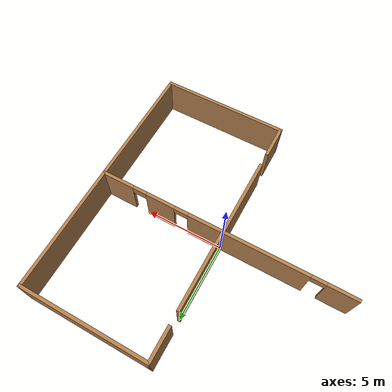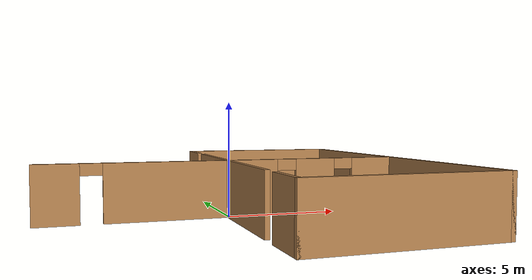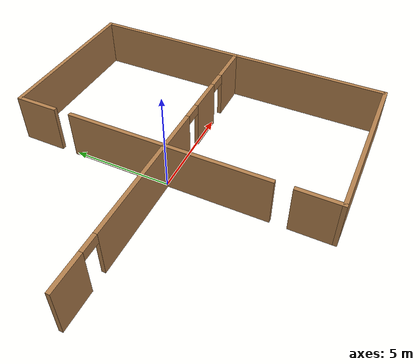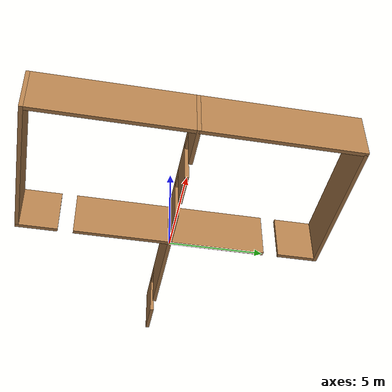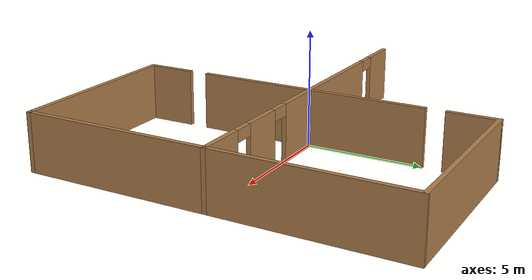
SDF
<?xml version='1.0'?>
<sdf version='1.7'>
  <model name='human_robot_transport'>
    <pose>0 0 0 0 -0 0</pose>
    <link name='Wall_0'>
      <collision name='Wall_0_Collision'>
        <geometry>
          <box>
            <size>2.2 0.2 2.5</size>
          </box>
        </geometry>
        <pose>0 0 1.25 0 -0 0</pose>
      </collision>
      <visual name='Wall_0_Visual'>
        <pose>0 0 1.25 0 -0 0</pose>
        <geometry>
          <box>
            <size>2.2 0.2 2.5</size>
          </box>
        </geometry>
        <material>
          <script>
            <uri>file://media/materials/scripts/gazebo.material</uri>
            <name>Gazebo/Wood</name>
          </script>
          <ambient>1 1 1 1</ambient>
        </material>
        <meta>
          <layer>0</layer>
        </meta>
      </visual>
      <pose>-0 -7 0 0 -0 1.5708</pose>
    </link>
    <link name='Wall_10'>
      <collision name='Wall_10_Collision'>
        <geometry>
          <box>
            <size>8.2 0.2 2.5</size>
          </box>
        </geometry>
        <pose>0 0 1.25 0 -0 0</pose>
      </collision>
      <visual name='Wall_10_Visual'>
        <pose>0 0 1.25 0 -0 0</pose>
        <geometry>
          <box>
            <size>8.2 0.2 2.5</size>
          </box>
        </geometry>
        <material>
          <script>
            <uri>file://media/materials/scripts/gazebo.material</uri>
            <name>Gazebo/Wood</name>
          </script>
          <ambient>1 1 1 1</ambient>
        </material>
        <meta>
          <layer>0</layer>
        </meta>
      </visual>
      <pose>4 8 0 0 -0 0</pose>
    </link>
    <link name='Wall_12'>
      <collision name='Wall_12_Collision'>
        <geometry>
          <box>
            <size>8.2 0.2 2.5</size>
          </box>
        </geometry>
        <pose>0 0 1.25 0 -0 0</pose>
      </collision>
      <visual name='Wall_12_Visual'>
        <pose>0 0 1.25 0 -0 0</pose>
        <geometry>
          <box>
            <size>8.2 0.2 2.5</size>
          </box>
        </geometry>
        <material>
          <script>
            <uri>file://media/materials/scripts/gazebo.material</uri>
            <name>Gazebo/Wood</name>
          </script>
          <ambient>1 1 1 1</ambient>
        </material>
        <meta>
          <layer>0</layer>
        </meta>
      </visual>
      <pose>4 -8 0 0 -0 0</pose>
    </link>
    <link name='Wall_2'>
      <pose>-0 0 0 0 -0 0</pose>
      <visual name='Wall_2_Visual_0'>
        <pose>-7.16221 0 1.25 0 -0 0</pose>
        <geometry>
          <box>
            <size>1.87558 0.2 2.5</size>
          </box>
        </geometry>
        <material>
          <script>
            <uri>file://media/materials/scripts/gazebo.material</uri>
            <name>Gazebo/Wood</name>
          </script>
          <ambient>1 1 1 1</ambient>
        </material>
        <meta>
          <layer>0</layer>
        </meta>
      </visual>
      <collision name='Wall_2_Collision_0'>
        <geometry>
          <box>
            <size>1.87558 0.2 2.5</size>
          </box>
        </geometry>
        <pose>-7.16221 0 1.25 0 -0 0</pose>
      </collision>
      <visual name='Wall_2_Visual_1'>
        <pose>-1.54681 0 1.25 0 -0 0</pose>
        <geometry>
          <box>
            <size>7.55522 0.2 2.5</size>
          </box>
        </geometry>
        <material>
          <script>
            <uri>file://media/materials/scripts/gazebo.material</uri>
            <name>Gazebo/Wood</name>
          </script>
          <ambient>1 1 1 1</ambient>
        </material>
        <meta>
          <layer>0</layer>
        </meta>
      </visual>
      <collision name='Wall_2_Collision_1'>
        <geometry>
          <box>
            <size>7.55522 0.2 2.5</size>
          </box>
        </geometry>
        <pose>-1.54681 0 1.25 0 -0 0</pose>
      </collision>
      <visual name='Wall_2_Visual_2'>
        <pose>4.07651 0 1.25 0 -0 0</pose>
        <geometry>
          <box>
            <size>1.89143 0.2 2.5</size>
          </box>
        </geometry>
        <material>
          <script>
            <uri>file://media/materials/scripts/gazebo.material</uri>
            <name>Gazebo/Wood</name>
          </script>
          <ambient>1 1 1 1</ambient>
        </material>
        <meta>
          <layer>0</layer>
        </meta>
      </visual>
      <collision name='Wall_2_Collision_2'>
        <geometry>
          <box>
            <size>1.89143 0.2 2.5</size>
          </box>
        </geometry>
        <pose>4.07651 0 1.25 0 -0 0</pose>
      </collision>
      <visual name='Wall_2_Visual_3'>
        <pose>7.01112 0 1.25 0 -0 0</pose>
        <geometry>
          <box>
            <size>2.17777 0.2 2.5</size>
          </box>
        </geometry>
        <material>
          <script>
            <uri>file://media/materials/scripts/gazebo.material</uri>
            <name>Gazebo/Wood</name>
          </script>
          <ambient>1 1 1 1</ambient>
        </material>
        <meta>
          <layer>0</layer>
        </meta>
      </visual>
      <collision name='Wall_2_Collision_3'>
        <geometry>
          <box>
            <size>2.17777 0.2 2.5</size>
          </box>
        </geometry>
        <pose>7.01112 0 1.25 0 -0 0</pose>
      </collision>
      <visual name='Wall_2_Visual_4'>
        <pose>-5.77442 0 2.25 0 -0 0</pose>
        <geometry>
          <box>
            <size>0.9 0.2 0.5</size>
          </box>
        </geometry>
        <material>
          <script>
            <uri>file://media/materials/scripts/gazebo.material</uri>
            <name>Gazebo/Wood</name>
          </script>
          <ambient>1 1 1 1</ambient>
        </material>
        <meta>
          <layer>0</layer>
        </meta>
      </visual>
      <collision name='Wall_2_Collision_4'>
        <geometry>
          <box>
            <size>0.9 0.2 0.5</size>
          </box>
        </geometry>
        <pose>-5.77442 0 2.25 0 -0 0</pose>
      </collision>
      <visual name='Wall_2_Visual_5'>
        <pose>2.6808 0 2.25 0 -0 0</pose>
        <geometry>
          <box>
            <size>0.9 0.2 0.5</size>
          </box>
        </geometry>
        <material>
          <script>
            <uri>file://media/materials/scripts/gazebo.material</uri>
            <name>Gazebo/Wood</name>
          </script>
          <ambient>1 1 1 1</ambient>
        </material>
        <meta>
          <layer>0</layer>
        </meta>
      </visual>
      <collision name='Wall_2_Collision_5'>
        <geometry>
          <box>
            <size>0.9 0.2 0.5</size>
          </box>
        </geometry>
        <pose>2.6808 0 2.25 0 -0 0</pose>
      </collision>
      <visual name='Wall_2_Visual_6'>
        <pose>5.47223 0 2.25 0 -0 0</pose>
        <geometry>
          <box>
            <size>0.9 0.2 0.5</size>
          </box>
        </geometry>
        <material>
          <script>
            <uri>file://media/materials/scripts/gazebo.material</uri>
            <name>Gazebo/Wood</name>
          </script>
          <ambient>1 1 1 1</ambient>
        </material>
        <meta>
          <layer>0</layer>
        </meta>
      </visual>
      <collision name='Wall_2_Collision_6'>
        <geometry>
          <box>
            <size>0.9 0.2 0.5</size>
          </box>
        </geometry>
        <pose>5.47223 0 2.25 0 -0 0</pose>
      </collision>
    </link>
    <link name='Wall_4'>
      <collision name='Wall_4_Collision'>
        <geometry>
          <box>
            <size>2.2 0.2 2.5</size>
          </box>
        </geometry>
        <pose>0 0 1.25 0 -0 0</pose>
      </collision>
      <visual name='Wall_4_Visual'>
        <pose>0 0 1.25 0 -0 0</pose>
        <geometry>
          <box>
            <size>2.2 0.2 2.5</size>
          </box>
        </geometry>
        <material>
          <script>
            <uri>file://media/materials/scripts/gazebo.material</uri>
            <name>Gazebo/Wood</name>
          </script>
          <ambient>1 1 1 1</ambient>
        </material>
        <meta>
          <layer>0</layer>
        </meta>
      </visual>
      <pose>-0 7 0 0 -0 1.5708</pose>
    </link>
    <link name='Wall_6'>
      <collision name='Wall_6_Collision'>
        <geometry>
          <box>
            <size>10.2 0.2 2.5</size>
          </box>
        </geometry>
        <pose>0 0 1.25 0 -0 0</pose>
      </collision>
      <visual name='Wall_6_Visual'>
        <pose>0 0 1.25 0 -0 0</pose>
        <geometry>
          <box>
            <size>10.2 0.2 2.5</size>
          </box>
        </geometry>
        <material>
          <script>
            <uri>file://media/materials/scripts/gazebo.material</uri>
            <name>Gazebo/Wood</name>
          </script>
          <ambient>1 1 1 1</ambient>
        </material>
        <meta>
          <layer>0</layer>
        </meta>
      </visual>
      <pose>-0 0 0 0 -0 -1.5708</pose>
    </link>
    <link name='Wall_8'>
      <collision name='Wall_8_Collision'>
        <geometry>
          <box>
            <size>16.2 0.2 2.5</size>
          </box>
        </geometry>
        <pose>0 0 1.25 0 -0 0</pose>
      </collision>
      <visual name='Wall_8_Visual'>
        <pose>0 0 1.25 0 -0 0</pose>
        <geometry>
          <box>
            <size>16.2 0.2 2.5</size>
          </box>
        </geometry>
        <material>
          <script>
            <uri>file://media/materials/scripts/gazebo.material</uri>
            <name>Gazebo/Wood</name>
          </script>
          <ambient>1 1 1 1</ambient>
        </material>
        <meta>
          <layer>0</layer>
        </meta>
      </visual>
      <pose>8 0 0 0 -0 -1.5708</pose>
    </link>
    <static>1</static>
  </model>
</sdf>
